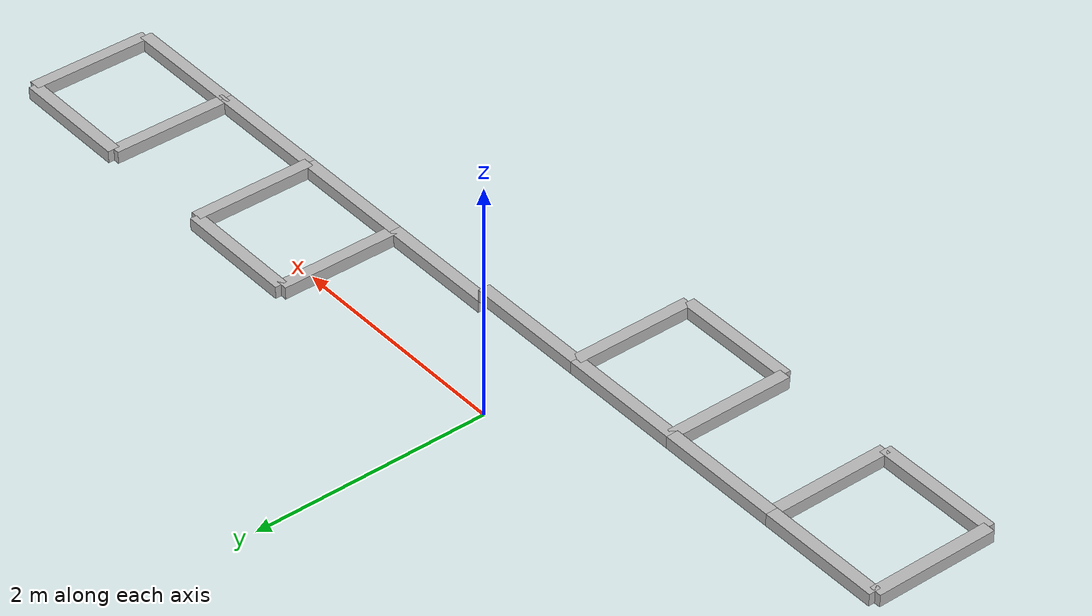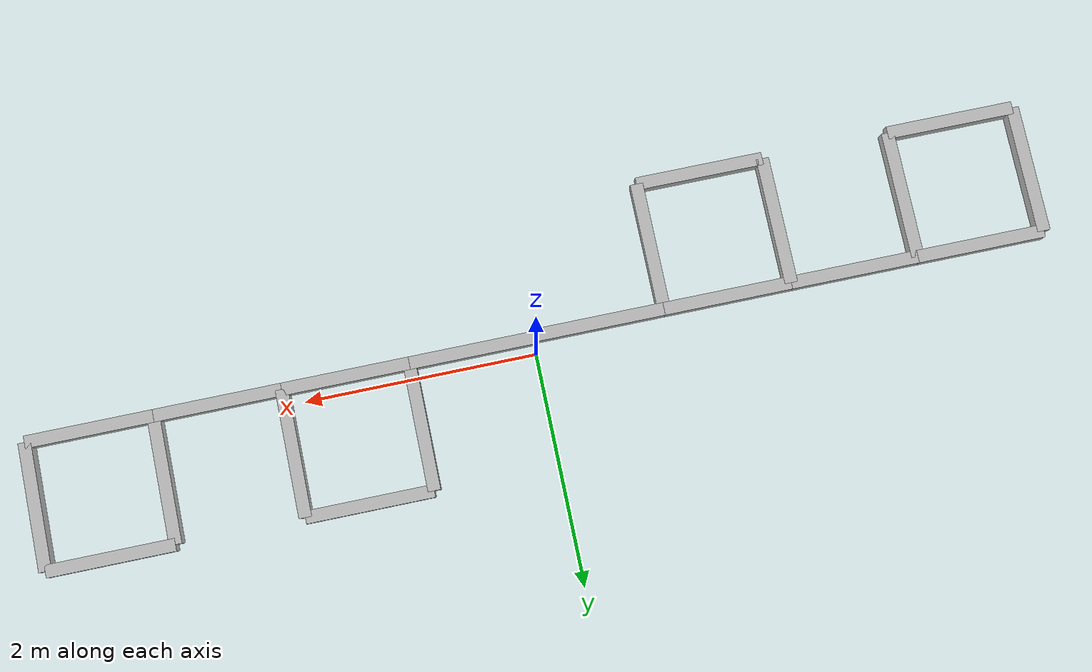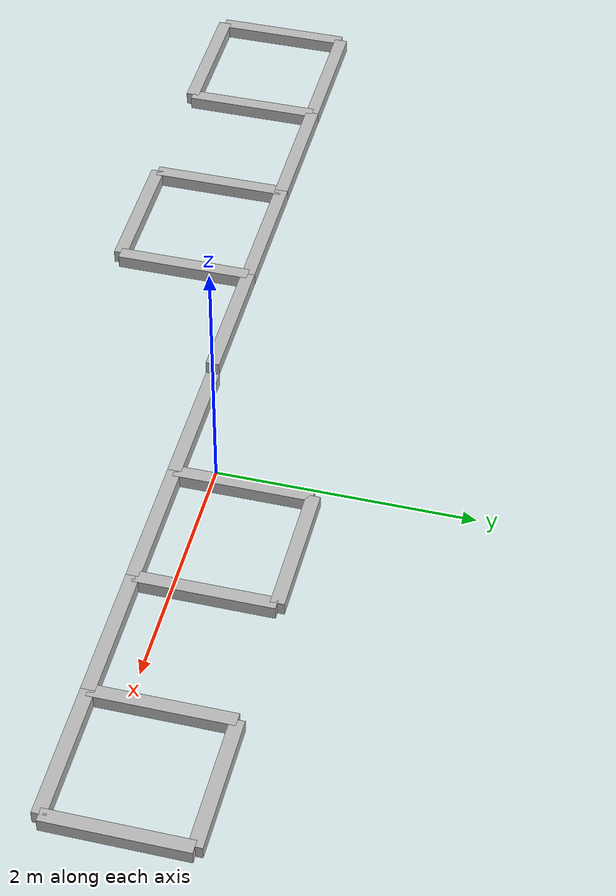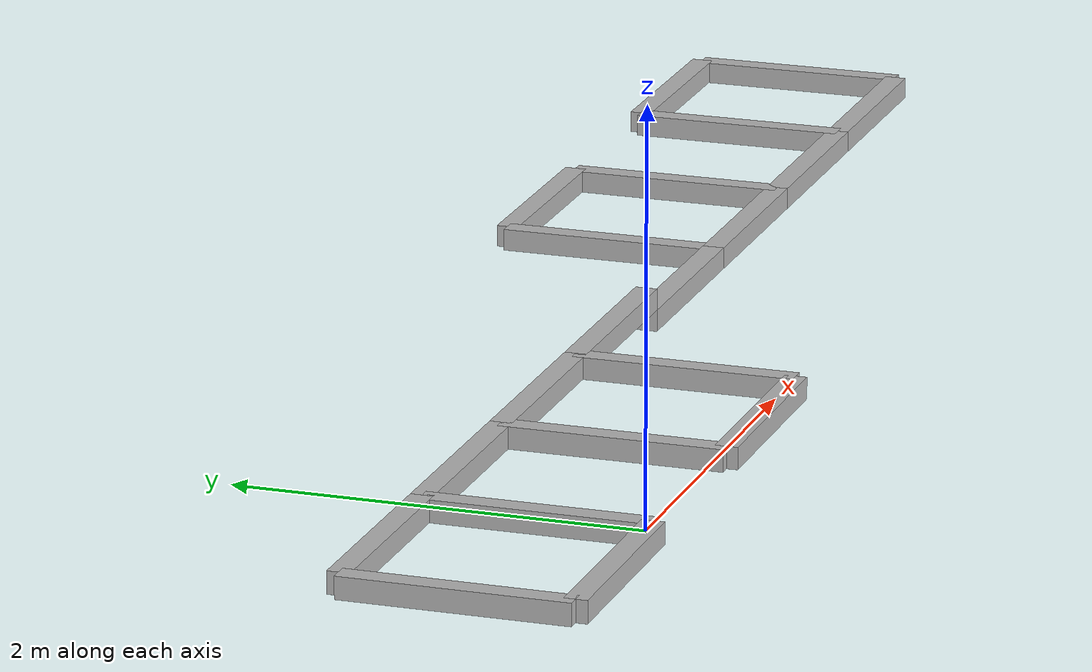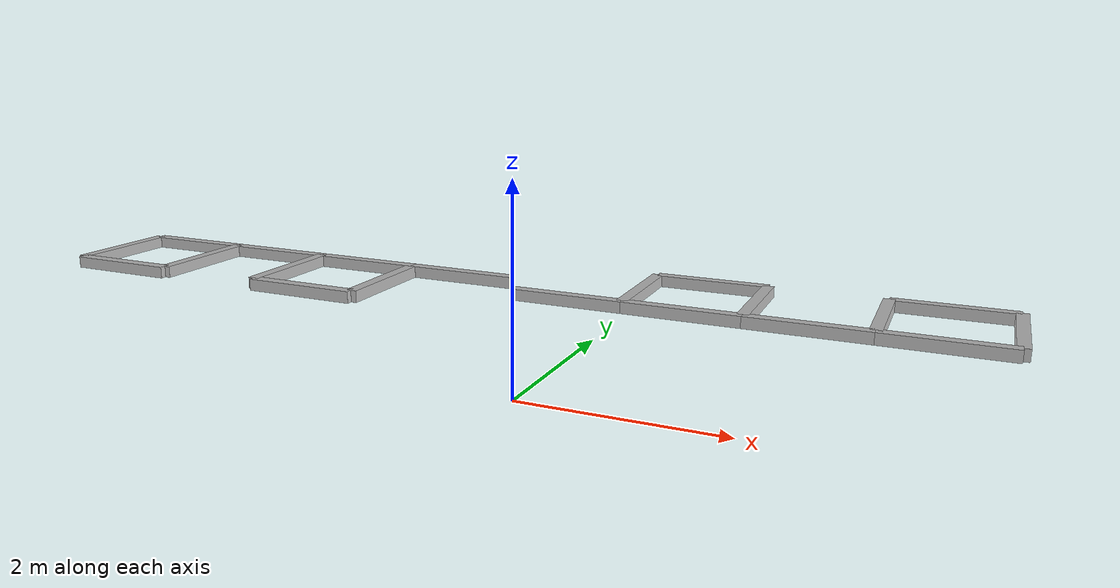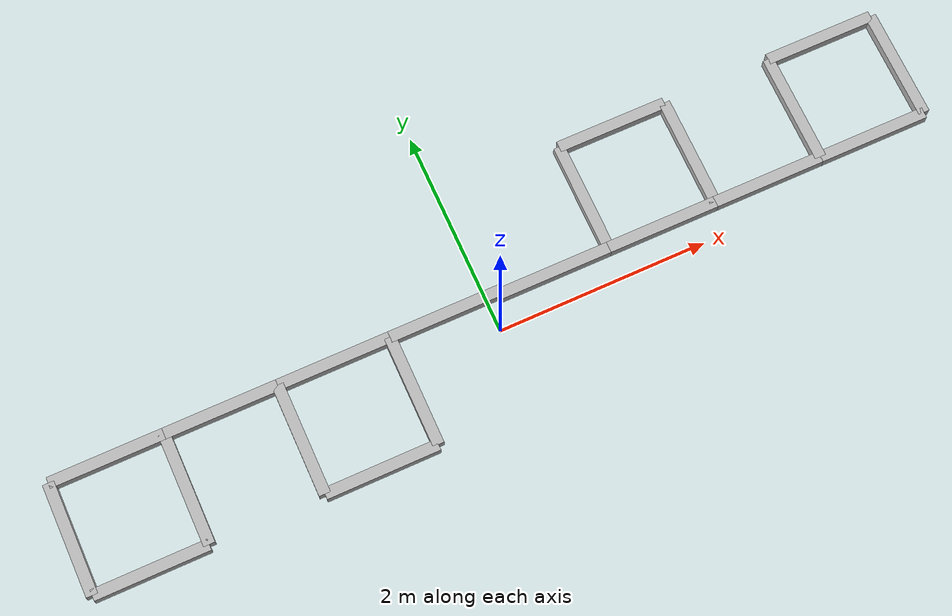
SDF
<sdf version='1.6'>
  <world name='default'>
    <physics name='default_physics' default='0' type='ode'>
      <ode>
        <solver>
          <type>quick</type>
          <iters>1000</iters>
          <precon_iters>0</precon_iters>
          <sor>1</sor>
          <use_dynamic_moi_rescaling>0</use_dynamic_moi_rescaling>
        </solver>
        <constraints>
          <cfm>0</cfm>
          <erp>0.2</erp>
          <contact_max_correcting_vel>100</contact_max_correcting_vel>
          <contact_surface_layer>0.01</contact_surface_layer>
        </constraints>
      </ode>
      <bullet>
        <solver>
          <type>sequential_impulse</type>
          <iters>1000</iters>
          <sor>1</sor>
        </solver>
        <constraints>
          <cfm>0</cfm>
          <erp>0.2</erp>
          <split_impulse>1</split_impulse>
          <split_impulse_penetration_threshold>-0.01</split_impulse_penetration_threshold>
          <contact_surface_layer>0</contact_surface_layer>
        </constraints>
      </bullet>
      <real_time_update_rate>0</real_time_update_rate>
      <max_step_size>0.001</max_step_size>
      <real_time_factor>1</real_time_factor>
    </physics>
    <light name='sun' type='directional'>
      <cast_shadows>1</cast_shadows>
      <pose frame=''>0 0 10 0 -0 0</pose>
      <diffuse>0.8 0.8 0.8 1</diffuse>
      <specular>0.1 0.1 0.1 1</specular>
      <attenuation>
        <range>1000</range>
        <constant>0.9</constant>
        <linear>0.01</linear>
        <quadratic>0.001</quadratic>
      </attenuation>
      <direction>-0.5 0.5 -1</direction>
    </light>
    <model name='model_1'>
      <pose frame=''>0 0 1 0 -0 0</pose>
      <link name='link_1'>
        <pose frame=''>0 0 0 0 -0 0</pose>
        <inertial>
          <pose frame=''>0.5 0 0 0 -0 0</pose>
          <mass>1</mass>
          <inertia>
            <ixx>0.001</ixx>
            <ixy>0</ixy>
            <ixz>0</ixz>
            <iyy>0.01</iyy>
            <iyz>0</iyz>
            <izz>0.01</izz>
          </inertia>
        </inertial>
        <collision name='collision'>
          <pose frame=''>0.5 0 0 0 -0 0</pose>
          <geometry>
            <box>
              <size>1 0.1 0.1</size>
            </box>
          </geometry>
        </collision>
        <visual name='visual'>
          <pose frame=''>0.5 0 0 0 -0 0</pose>
          <geometry>
            <box>
              <size>1 0.1 0.1</size>
            </box>
          </geometry>
          <material>
            <script>
              <uri>__default__</uri>
              <name>__default__</name>
            </script>
          </material>
        </visual>
      </link>
      <link name='link_2'>
        <pose frame=''>1 0 0 0 -0 0</pose>
        <inertial>
          <pose frame=''>0.5 0 0 0 -0 0</pose>
          <mass>1</mass>
          <inertia>
            <ixx>0.001</ixx>
            <ixy>0</ixy>
            <ixz>0</ixz>
            <iyy>0.01</iyy>
            <iyz>0</iyz>
            <izz>0.01</izz>
          </inertia>
        </inertial>
        <collision name='collision'>
          <pose frame=''>0.5 0 0 0 -0 0</pose>
          <geometry>
            <box>
              <size>1 0.1 0.1</size>
            </box>
          </geometry>
        </collision>
        <visual name='visual'>
          <pose frame=''>0.5 0 0 0 -0 0</pose>
          <geometry>
            <box>
              <size>1 0.1 0.1</size>
            </box>
          </geometry>
          <material>
            <script>
              <uri>__default__</uri>
              <name>__default__</name>
            </script>
          </material>
        </visual>
      </link>
      <joint name='joint_01' type='revolute'>
        <parent>world</parent>
        <child>link_1</child>
        <axis>
          <initial_position>0</initial_position>
          <xyz>1 1 0</xyz>
          <limit>
            <upper>0.7071</upper>
            <lower>-0.7071</lower>
          </limit>
          <use_parent_model_frame>1</use_parent_model_frame>
        </axis>
      </joint>
      <joint name='joint_12' type='revolute'>
        <parent>link_1</parent>
        <child>link_2</child>
        <axis>
          <initial_position>0</initial_position>
          <xyz>1 -1 0</xyz>
          <limit>
            <upper>0.7071</upper>
            <lower>-0.7071</lower>
          </limit>
          <use_parent_model_frame>1</use_parent_model_frame>
        </axis>
      </joint>
      <link name='link_3'>
        <pose frame=''>2 0 0 0 -0 1.5708</pose>
        <inertial>
          <pose frame=''>0.5 0 0 0 -0 0</pose>
          <mass>1</mass>
          <inertia>
            <ixx>0.001</ixx>
            <ixy>0</ixy>
            <ixz>0</ixz>
            <iyy>0.01</iyy>
            <iyz>0</iyz>
            <izz>0.01</izz>
          </inertia>
        </inertial>
        <collision name='collision'>
          <pose frame=''>0.5 0 0 0 -0 0</pose>
          <geometry>
            <box>
              <size>1 0.1 0.1</size>
            </box>
          </geometry>
        </collision>
        <visual name='visual'>
          <pose frame=''>0.5 0 0 0 -0 0</pose>
          <geometry>
            <box>
              <size>1 0.1 0.1</size>
            </box>
          </geometry>
          <material>
            <script>
              <uri>__default__</uri>
              <name>__default__</name>
            </script>
          </material>
        </visual>
      </link>
      <joint name='joint_23' type='revolute'>
        <parent>link_2</parent>
        <child>link_3</child>
        <axis>
          <initial_position>0</initial_position>
          <xyz>0 0 1</xyz>
          <limit>
            <upper>0.7071</upper>
            <lower>-0.7071</lower>
          </limit>
          <use_parent_model_frame>1</use_parent_model_frame>
        </axis>
      </joint>
      <link name='link_4'>
        <pose frame=''>2 1 0 0 -0 3.14159</pose>
        <inertial>
          <pose frame=''>0.5 0 0 0 -0 0</pose>
          <mass>1</mass>
          <inertia>
            <ixx>0.001</ixx>
            <ixy>0</ixy>
            <ixz>0</ixz>
            <iyy>0.01</iyy>
            <iyz>0</iyz>
            <izz>0.01</izz>
          </inertia>
        </inertial>
        <collision name='collision'>
          <pose frame=''>0.5 0 0 0 -0 0</pose>
          <geometry>
            <box>
              <size>1 0.1 0.1</size>
            </box>
          </geometry>
        </collision>
        <visual name='visual'>
          <pose frame=''>0.5 0 0 0 -0 0</pose>
          <geometry>
            <box>
              <size>1 0.1 0.1</size>
            </box>
          </geometry>
          <material>
            <script>
              <uri>__default__</uri>
              <name>__default__</name>
            </script>
          </material>
        </visual>
      </link>
      <joint name='joint_34' type='revolute'>
        <parent>link_3</parent>
        <child>link_4</child>
        <axis>
          <initial_position>0</initial_position>
          <xyz>0 0 1</xyz>
          <limit>
            <upper>0.7071</upper>
            <lower>-0.7071</lower>
          </limit>
          <use_parent_model_frame>1</use_parent_model_frame>
        </axis>
      </joint>
      <link name='link_5'>
        <pose frame=''>1 1 0 0 -0 -1.5708</pose>
        <inertial>
          <pose frame=''>0.5 0 0 0 -0 0</pose>
          <mass>1</mass>
          <inertia>
            <ixx>0.001</ixx>
            <ixy>0</ixy>
            <ixz>0</ixz>
            <iyy>0.01</iyy>
            <iyz>0</iyz>
            <izz>0.01</izz>
          </inertia>
        </inertial>
        <collision name='collision'>
          <pose frame=''>0.5 0 0 0 -0 0</pose>
          <geometry>
            <box>
              <size>1 0.1 0.1</size>
            </box>
          </geometry>
        </collision>
        <visual name='visual'>
          <pose frame=''>0.5 0 0 0 -0 0</pose>
          <geometry>
            <box>
              <size>1 0.1 0.1</size>
            </box>
          </geometry>
          <material>
            <script>
              <uri>__default__</uri>
              <name>__default__</name>
            </script>
          </material>
        </visual>
      </link>
      <joint name='joint_45' type='revolute'>
        <parent>link_4</parent>
        <child>link_5</child>
        <axis>
          <initial_position>0</initial_position>
          <xyz>0 0 1</xyz>
          <limit>
            <upper>0.7071</upper>
            <lower>-0.7071</lower>
          </limit>
          <use_parent_model_frame>1</use_parent_model_frame>
        </axis>
      </joint>
      <joint name='joint_52' type='revolute'>
        <parent>link_5</parent>
        <child>link_2</child>
        <axis>
          <initial_position>0</initial_position>
          <xyz>0 0 1</xyz>
          <limit>
            <upper>0.7071</upper>
            <lower>-0.7071</lower>
          </limit>
          <use_parent_model_frame>1</use_parent_model_frame>
        </axis>
      </joint>
      <link name='link_2a'>
        <pose frame=''>2 0 0 0 -0 0</pose>
        <inertial>
          <pose frame=''>0.5 0 0 0 -0 0</pose>
          <mass>1</mass>
          <inertia>
            <ixx>0.001</ixx>
            <ixy>0</ixy>
            <ixz>0</ixz>
            <iyy>0.01</iyy>
            <iyz>0</iyz>
            <izz>0.01</izz>
          </inertia>
        </inertial>
        <collision name='collision'>
          <pose frame=''>0.5 0 0 0 -0 0</pose>
          <geometry>
            <box>
              <size>1 0.1 0.1</size>
            </box>
          </geometry>
        </collision>
        <visual name='visual'>
          <pose frame=''>0.5 0 0 0 -0 0</pose>
          <geometry>
            <box>
              <size>1 0.1 0.1</size>
            </box>
          </geometry>
          <material>
            <script>
              <uri>__default__</uri>
              <name>__default__</name>
            </script>
          </material>
        </visual>
      </link>
      <joint name='joint_22a' type='revolute'>
        <parent>link_2</parent>
        <child>link_2a</child>
        <axis>
          <initial_position>0</initial_position>
          <xyz>0 0 1</xyz>
          <limit>
            <upper>0.7071</upper>
            <lower>-0.7071</lower>
          </limit>
          <use_parent_model_frame>1</use_parent_model_frame>
        </axis>
      </joint>
      <link name='link_2b'>
        <pose frame=''>3 0 0 0 -0 0</pose>
        <inertial>
          <pose frame=''>0.5 0 0 0 -0 0</pose>
          <mass>1</mass>
          <inertia>
            <ixx>0.001</ixx>
            <ixy>0</ixy>
            <ixz>0</ixz>
            <iyy>0.01</iyy>
            <iyz>0</iyz>
            <izz>0.01</izz>
          </inertia>
        </inertial>
        <collision name='collision'>
          <pose frame=''>0.5 0 0 0 -0 0</pose>
          <geometry>
            <box>
              <size>1 0.1 0.1</size>
            </box>
          </geometry>
        </collision>
        <visual name='visual'>
          <pose frame=''>0.5 0 0 0 -0 0</pose>
          <geometry>
            <box>
              <size>1 0.1 0.1</size>
            </box>
          </geometry>
          <material>
            <script>
              <uri>__default__</uri>
              <name>__default__</name>
            </script>
          </material>
        </visual>
      </link>
      <joint name='joint_2a2b' type='revolute'>
        <parent>link_2a</parent>
        <child>link_2b</child>
        <axis>
          <initial_position>0</initial_position>
          <xyz>0 0 1</xyz>
          <limit>
            <upper>0.7071</upper>
            <lower>-0.7071</lower>
          </limit>
          <use_parent_model_frame>1</use_parent_model_frame>
        </axis>
      </joint>
      <link name='link_3a'>
        <pose frame=''>4 0 0 0 -0 1.5708</pose>
        <inertial>
          <pose frame=''>0.5 0 0 0 -0 0</pose>
          <mass>1</mass>
          <inertia>
            <ixx>0.001</ixx>
            <ixy>0</ixy>
            <ixz>0</ixz>
            <iyy>0.01</iyy>
            <iyz>0</iyz>
            <izz>0.01</izz>
          </inertia>
        </inertial>
        <collision name='collision'>
          <pose frame=''>0.5 0 0 0 -0 0</pose>
          <geometry>
            <box>
              <size>1 0.1 0.1</size>
            </box>
          </geometry>
        </collision>
        <visual name='visual'>
          <pose frame=''>0.5 0 0 0 -0 0</pose>
          <geometry>
            <box>
              <size>1 0.1 0.1</size>
            </box>
          </geometry>
          <material>
            <script>
              <uri>__default__</uri>
              <name>__default__</name>
            </script>
          </material>
        </visual>
      </link>
      <joint name='joint_2b3a' type='revolute'>
        <parent>link_2b</parent>
        <child>link_3a</child>
        <axis>
          <initial_position>0</initial_position>
          <xyz>0 0 1</xyz>
          <limit>
            <upper>0.7071</upper>
            <lower>-0.7071</lower>
          </limit>
          <use_parent_model_frame>1</use_parent_model_frame>
        </axis>
      </joint>
      <link name='link_4a'>
        <pose frame=''>4 1 0 0 -0 3.14159</pose>
        <inertial>
          <pose frame=''>0.5 0 0 0 -0 0</pose>
          <mass>1</mass>
          <inertia>
            <ixx>0.001</ixx>
            <ixy>0</ixy>
            <ixz>0</ixz>
            <iyy>0.01</iyy>
            <iyz>0</iyz>
            <izz>0.01</izz>
          </inertia>
        </inertial>
        <collision name='collision'>
          <pose frame=''>0.5 0 0 0 -0 0</pose>
          <geometry>
            <box>
              <size>1 0.1 0.1</size>
            </box>
          </geometry>
        </collision>
        <visual name='visual'>
          <pose frame=''>0.5 0 0 0 -0 0</pose>
          <geometry>
            <box>
              <size>1 0.1 0.1</size>
            </box>
          </geometry>
          <material>
            <script>
              <uri>__default__</uri>
              <name>__default__</name>
            </script>
          </material>
        </visual>
      </link>
      <joint name='joint_3a4a' type='revolute'>
        <parent>link_3a</parent>
        <child>link_4a</child>
        <axis>
          <initial_position>0</initial_position>
          <xyz>0 0 1</xyz>
          <limit>
            <upper>0.7071</upper>
            <lower>-0.7071</lower>
          </limit>
          <use_parent_model_frame>1</use_parent_model_frame>
        </axis>
      </joint>
      <link name='link_5a'>
        <pose frame=''>3 1 0 0 -0 -1.5708</pose>
        <inertial>
          <pose frame=''>0.5 0 0 0 -0 0</pose>
          <mass>1</mass>
          <inertia>
            <ixx>0.001</ixx>
            <ixy>0</ixy>
            <ixz>0</ixz>
            <iyy>0.01</iyy>
            <iyz>0</iyz>
            <izz>0.01</izz>
          </inertia>
        </inertial>
        <collision name='collision'>
          <pose frame=''>0.5 0 0 0 -0 0</pose>
          <geometry>
            <box>
              <size>1 0.1 0.1</size>
            </box>
          </geometry>
        </collision>
        <visual name='visual'>
          <pose frame=''>0.5 0 0 0 -0 0</pose>
          <geometry>
            <box>
              <size>1 0.1 0.1</size>
            </box>
          </geometry>
          <material>
            <script>
              <uri>__default__</uri>
              <name>__default__</name>
            </script>
          </material>
        </visual>
      </link>
      <joint name='joint_4a5a' type='revolute'>
        <parent>link_4a</parent>
        <child>link_5a</child>
        <axis>
          <initial_position>0</initial_position>
          <xyz>0 0 1</xyz>
          <limit>
            <upper>0.7071</upper>
            <lower>-0.7071</lower>
          </limit>
          <use_parent_model_frame>1</use_parent_model_frame>
        </axis>
      </joint>
      <joint name='joint_5a2b' type='revolute'>
        <parent>link_5a</parent>
        <child>link_2b</child>
        <axis>
          <initial_position>0</initial_position>
          <xyz>0 0 1</xyz>
          <limit>
            <upper>0.7071</upper>
            <lower>-0.7071</lower>
          </limit>
          <use_parent_model_frame>1</use_parent_model_frame>
        </axis>
      </joint>
    </model>

    <model name='model_2'>
      <pose frame=''>0 0 1.1 0 -0 3.1416</pose>
      <link name='link_1'>
        <pose frame=''>0 0 0 0 -0 0</pose>
        <inertial>
          <pose frame=''>0.5 0 0 0 -0 0</pose>
          <mass>1</mass>
          <inertia>
            <ixx>0.001</ixx>
            <ixy>0</ixy>
            <ixz>0</ixz>
            <iyy>0.01</iyy>
            <iyz>0</iyz>
            <izz>0.01</izz>
          </inertia>
        </inertial>
        <collision name='collision'>
          <pose frame=''>0.5 0 0 0 -0 0</pose>
          <geometry>
            <box>
              <size>1 0.1 0.1</size>
            </box>
          </geometry>
        </collision>
        <visual name='visual'>
          <pose frame=''>0.5 0 0 0 -0 0</pose>
          <geometry>
            <box>
              <size>1 0.1 0.1</size>
            </box>
          </geometry>
          <material>
            <script>
              <uri>__default__</uri>
              <name>__default__</name>
            </script>
          </material>
        </visual>
      </link>
      <link name='link_2'>
        <pose frame=''>1 0 0 0 -0 0</pose>
        <inertial>
          <pose frame=''>0.5 0 0 0 -0 0</pose>
          <mass>1</mass>
          <inertia>
            <ixx>0.001</ixx>
            <ixy>0</ixy>
            <ixz>0</ixz>
            <iyy>0.01</iyy>
            <iyz>0</iyz>
            <izz>0.01</izz>
          </inertia>
        </inertial>
        <collision name='collision'>
          <pose frame=''>0.5 0 0 0 -0 0</pose>
          <geometry>
            <box>
              <size>1 0.1 0.1</size>
            </box>
          </geometry>
        </collision>
        <visual name='visual'>
          <pose frame=''>0.5 0 0 0 -0 0</pose>
          <geometry>
            <box>
              <size>1 0.1 0.1</size>
            </box>
          </geometry>
          <material>
            <script>
              <uri>__default__</uri>
              <name>__default__</name>
            </script>
          </material>
        </visual>
      </link>
      <joint name='joint_01' type='revolute'>
        <parent>world</parent>
        <child>link_1</child>
        <axis>
          <initial_position>0.5</initial_position>
          <xyz>1 1 0</xyz>
          <limit>
            <upper>0.7071</upper>
            <lower>-0.7071</lower>
          </limit>
          <use_parent_model_frame>1</use_parent_model_frame>
        </axis>
      </joint>
      <joint name='joint_12' type='revolute'>
        <parent>link_1</parent>
        <child>link_2</child>
        <axis>
          <initial_position>1</initial_position>
          <xyz>1 -1 0</xyz>
          <limit>
            <upper>0.7071</upper>
            <lower>-0.7071</lower>
          </limit>
          <use_parent_model_frame>1</use_parent_model_frame>
        </axis>
      </joint>
      <link name='link_3'>
        <pose frame=''>2 0 0 0 -0 1.5708</pose>
        <inertial>
          <pose frame=''>0.5 0 0 0 -0 0</pose>
          <mass>1</mass>
          <inertia>
            <ixx>0.001</ixx>
            <ixy>0</ixy>
            <ixz>0</ixz>
            <iyy>0.01</iyy>
            <iyz>0</iyz>
            <izz>0.01</izz>
          </inertia>
        </inertial>
        <collision name='collision'>
          <pose frame=''>0.5 0 0 0 -0 0</pose>
          <geometry>
            <box>
              <size>1 0.1 0.1</size>
            </box>
          </geometry>
        </collision>
        <visual name='visual'>
          <pose frame=''>0.5 0 0 0 -0 0</pose>
          <geometry>
            <box>
              <size>1 0.1 0.1</size>
            </box>
          </geometry>
          <material>
            <script>
              <uri>__default__</uri>
              <name>__default__</name>
            </script>
          </material>
        </visual>
      </link>
      <joint name='joint_23' type='revolute'>
        <parent>link_2</parent>
        <child>link_3</child>
        <axis>
          <initial_position>1</initial_position>
          <xyz>0 0 1</xyz>
          <limit>
            <upper>0.7071</upper>
            <lower>-0.7071</lower>
          </limit>
          <use_parent_model_frame>1</use_parent_model_frame>
        </axis>
      </joint>
      <link name='link_4'>
        <pose frame=''>2 1 0 0 -0 3.14159</pose>
        <inertial>
          <pose frame=''>0.5 0 0 0 -0 0</pose>
          <mass>1</mass>
          <inertia>
            <ixx>0.001</ixx>
            <ixy>0</ixy>
            <ixz>0</ixz>
            <iyy>0.01</iyy>
            <iyz>0</iyz>
            <izz>0.01</izz>
          </inertia>
        </inertial>
        <collision name='collision'>
          <pose frame=''>0.5 0 0 0 -0 0</pose>
          <geometry>
            <box>
              <size>1 0.1 0.1</size>
            </box>
          </geometry>
        </collision>
        <visual name='visual'>
          <pose frame=''>0.5 0 0 0 -0 0</pose>
          <geometry>
            <box>
              <size>1 0.1 0.1</size>
            </box>
          </geometry>
          <material>
            <script>
              <uri>__default__</uri>
              <name>__default__</name>
            </script>
          </material>
        </visual>
      </link>
      <joint name='joint_34' type='revolute'>
        <parent>link_3</parent>
        <child>link_4</child>
        <axis>
          <initial_position>2</initial_position>
          <xyz>0 0 1</xyz>
          <limit>
            <upper>0.7071</upper>
            <lower>-0.7071</lower>
          </limit>
          <use_parent_model_frame>1</use_parent_model_frame>
        </axis>
      </joint>
      <link name='link_5'>
        <pose frame=''>1 1 0 0 -0 -1.5708</pose>
        <inertial>
          <pose frame=''>0.5 0 0 0 -0 0</pose>
          <mass>1</mass>
          <inertia>
            <ixx>0.001</ixx>
            <ixy>0</ixy>
            <ixz>0</ixz>
            <iyy>0.01</iyy>
            <iyz>0</iyz>
            <izz>0.01</izz>
          </inertia>
        </inertial>
        <collision name='collision'>
          <pose frame=''>0.5 0 0 0 -0 0</pose>
          <geometry>
            <box>
              <size>1 0.1 0.1</size>
            </box>
          </geometry>
        </collision>
        <visual name='visual'>
          <pose frame=''>0.5 0 0 0 -0 0</pose>
          <geometry>
            <box>
              <size>1 0.1 0.1</size>
            </box>
          </geometry>
          <material>
            <script>
              <uri>__default__</uri>
              <name>__default__</name>
            </script>
          </material>
        </visual>
      </link>
      <joint name='joint_45' type='revolute'>
        <parent>link_4</parent>
        <child>link_5</child>
        <axis>
          <initial_position>3</initial_position>
          <xyz>0 0 1</xyz>
          <limit>
            <upper>0.7071</upper>
            <lower>-0.7071</lower>
          </limit>
          <use_parent_model_frame>1</use_parent_model_frame>
        </axis>
      </joint>
      <joint name='joint_52' type='revolute'>
        <parent>link_5</parent>
        <child>link_2</child>
        <axis>
          <initial_position>4</initial_position>
          <xyz>0 0 1</xyz>
          <limit>
            <upper>0.7071</upper>
            <lower>-0.7071</lower>
          </limit>
          <use_parent_model_frame>1</use_parent_model_frame>
        </axis>
      </joint>
      <link name='link_2a'>
        <pose frame=''>2 0 0 0 -0 0</pose>
        <inertial>
          <pose frame=''>0.5 0 0 0 -0 0</pose>
          <mass>1</mass>
          <inertia>
            <ixx>0.001</ixx>
            <ixy>0</ixy>
            <ixz>0</ixz>
            <iyy>0.01</iyy>
            <iyz>0</iyz>
            <izz>0.01</izz>
          </inertia>
        </inertial>
        <collision name='collision'>
          <pose frame=''>0.5 0 0 0 -0 0</pose>
          <geometry>
            <box>
              <size>1 0.1 0.1</size>
            </box>
          </geometry>
        </collision>
        <visual name='visual'>
          <pose frame=''>0.5 0 0 0 -0 0</pose>
          <geometry>
            <box>
              <size>1 0.1 0.1</size>
            </box>
          </geometry>
          <material>
            <script>
              <uri>__default__</uri>
              <name>__default__</name>
            </script>
          </material>
        </visual>
      </link>
      <joint name='joint_22a' type='revolute'>
        <parent>link_2</parent>
        <child>link_2a</child>
        <axis>
          <initial_position>8</initial_position>
          <xyz>0 0 1</xyz>
          <limit>
            <upper>0.7071</upper>
            <lower>-0.7071</lower>
          </limit>
          <use_parent_model_frame>1</use_parent_model_frame>
        </axis>
      </joint>
      <link name='link_2b'>
        <pose frame=''>3 0 0 0 -0 0</pose>
        <inertial>
          <pose frame=''>0.5 0 0 0 -0 0</pose>
          <mass>1</mass>
          <inertia>
            <ixx>0.001</ixx>
            <ixy>0</ixy>
            <ixz>0</ixz>
            <iyy>0.01</iyy>
            <iyz>0</iyz>
            <izz>0.01</izz>
          </inertia>
        </inertial>
        <collision name='collision'>
          <pose frame=''>0.5 0 0 0 -0 0</pose>
          <geometry>
            <box>
              <size>1 0.1 0.1</size>
            </box>
          </geometry>
        </collision>
        <visual name='visual'>
          <pose frame=''>0.5 0 0 0 -0 0</pose>
          <geometry>
            <box>
              <size>1 0.1 0.1</size>
            </box>
          </geometry>
          <material>
            <script>
              <uri>__default__</uri>
              <name>__default__</name>
            </script>
          </material>
        </visual>
      </link>
      <joint name='joint_2a2b' type='revolute'>
        <parent>link_2a</parent>
        <child>link_2b</child>
        <axis>
          <initial_position>-8</initial_position>
          <xyz>0 0 1</xyz>
          <limit>
            <upper>0.7071</upper>
            <lower>-0.7071</lower>
          </limit>
          <use_parent_model_frame>1</use_parent_model_frame>
        </axis>
      </joint>
      <link name='link_3a'>
        <pose frame=''>4 0 0 0 -0 1.5708</pose>
        <inertial>
          <pose frame=''>0.5 0 0 0 -0 0</pose>
          <mass>1</mass>
          <inertia>
            <ixx>0.001</ixx>
            <ixy>0</ixy>
            <ixz>0</ixz>
            <iyy>0.01</iyy>
            <iyz>0</iyz>
            <izz>0.01</izz>
          </inertia>
        </inertial>
        <collision name='collision'>
          <pose frame=''>0.5 0 0 0 -0 0</pose>
          <geometry>
            <box>
              <size>1 0.1 0.1</size>
            </box>
          </geometry>
        </collision>
        <visual name='visual'>
          <pose frame=''>0.5 0 0 0 -0 0</pose>
          <geometry>
            <box>
              <size>1 0.1 0.1</size>
            </box>
          </geometry>
          <material>
            <script>
              <uri>__default__</uri>
              <name>__default__</name>
            </script>
          </material>
        </visual>
      </link>
      <joint name='joint_2b3a' type='revolute'>
        <parent>link_2b</parent>
        <child>link_3a</child>
        <axis>
          <initial_position>10</initial_position>
          <xyz>0 0 1</xyz>
          <limit>
            <upper>0.7071</upper>
            <lower>-0.7071</lower>
          </limit>
          <use_parent_model_frame>1</use_parent_model_frame>
        </axis>
      </joint>
      <link name='link_4a'>
        <pose frame=''>4 1 0 0 -0 3.14159</pose>
        <inertial>
          <pose frame=''>0.5 0 0 0 -0 0</pose>
          <mass>1</mass>
          <inertia>
            <ixx>0.001</ixx>
            <ixy>0</ixy>
            <ixz>0</ixz>
            <iyy>0.01</iyy>
            <iyz>0</iyz>
            <izz>0.01</izz>
          </inertia>
        </inertial>
        <collision name='collision'>
          <pose frame=''>0.5 0 0 0 -0 0</pose>
          <geometry>
            <box>
              <size>1 0.1 0.1</size>
            </box>
          </geometry>
        </collision>
        <visual name='visual'>
          <pose frame=''>0.5 0 0 0 -0 0</pose>
          <geometry>
            <box>
              <size>1 0.1 0.1</size>
            </box>
          </geometry>
          <material>
            <script>
              <uri>__default__</uri>
              <name>__default__</name>
            </script>
          </material>
        </visual>
      </link>
      <joint name='joint_3a4a' type='revolute'>
        <parent>link_3a</parent>
        <child>link_4a</child>
        <axis>
          <initial_position>11</initial_position>
          <xyz>0 0 1</xyz>
          <limit>
            <upper>0.7071</upper>
            <lower>-0.7071</lower>
          </limit>
          <use_parent_model_frame>1</use_parent_model_frame>
        </axis>
      </joint>
      <link name='link_5a'>
        <pose frame=''>3 1 0 0 -0 -1.5708</pose>
        <inertial>
          <pose frame=''>0.5 0 0 0 -0 0</pose>
          <mass>1</mass>
          <inertia>
            <ixx>0.001</ixx>
            <ixy>0</ixy>
            <ixz>0</ixz>
            <iyy>0.01</iyy>
            <iyz>0</iyz>
            <izz>0.01</izz>
          </inertia>
        </inertial>
        <collision name='collision'>
          <pose frame=''>0.5 0 0 0 -0 0</pose>
          <geometry>
            <box>
              <size>1 0.1 0.1</size>
            </box>
          </geometry>
        </collision>
        <visual name='visual'>
          <pose frame=''>0.5 0 0 0 -0 0</pose>
          <geometry>
            <box>
              <size>1 0.1 0.1</size>
            </box>
          </geometry>
          <material>
            <script>
              <uri>__default__</uri>
              <name>__default__</name>
            </script>
          </material>
        </visual>
      </link>
      <joint name='joint_4a5a' type='revolute'>
        <parent>link_4a</parent>
        <child>link_5a</child>
        <axis>
          <initial_position>12</initial_position>
          <xyz>0 0 1</xyz>
          <limit>
            <upper>0.7071</upper>
            <lower>-0.7071</lower>
          </limit>
          <use_parent_model_frame>1</use_parent_model_frame>
        </axis>
      </joint>
      <joint name='joint_5a2b' type='revolute'>
        <parent>link_5a</parent>
        <child>link_2b</child>
        <axis>
          <initial_position>-13</initial_position>
          <xyz>0 0 1</xyz>
          <limit>
            <upper>0.7071</upper>
            <lower>-0.7071</lower>
          </limit>
          <use_parent_model_frame>1</use_parent_model_frame>
        </axis>
      </joint>
    </model>
    <gravity>0 0 0</gravity>
    <magnetic_field>6e-06 2.3e-05 -4.2e-05</magnetic_field>
    <atmosphere type='adiabatic'/>
    <scene>
      <ambient>0.4 0.4 0.4 1</ambient>
      <background>0.7 0.7 0.7 1</background>
      <shadows>1</shadows>
    </scene>
  </world>
</sdf>
